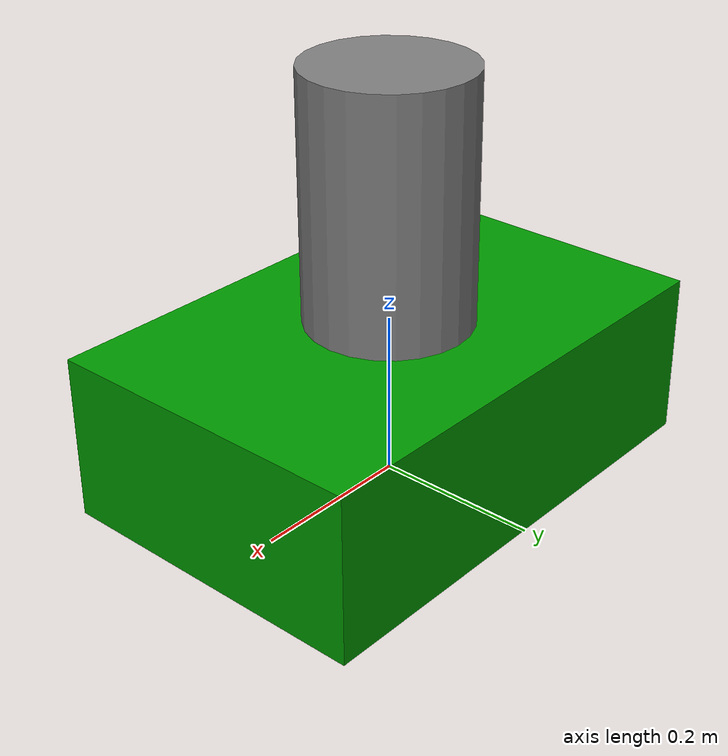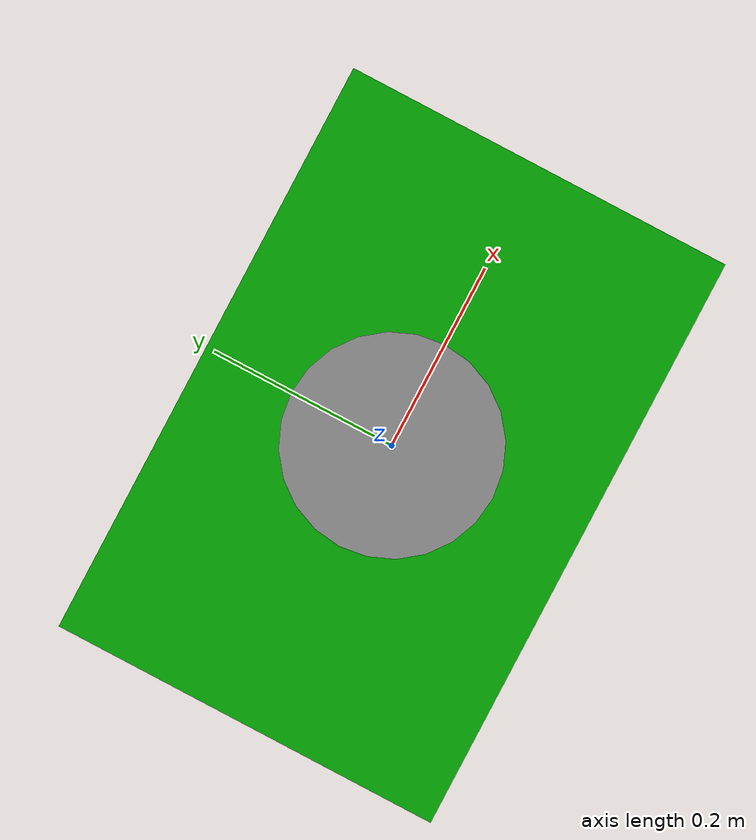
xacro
<?xml version="1.0"?>

<robot name="my_robot" xmlns:xacro="http://www.ros.org/wiki/xacro">

    <!-- Definición de materiales -->
    <material name="green">
        <color rgba="0 0.6 0 1"/> <!-- Color verde -->
    </material>
    <material name="grey">
        <color rgba="0.5 0.5 0.5 1"/> <!-- Color gris -->
    </material>

    <!-- Definición del enlace base (base_link) -->
    <link name="base_link">
        <visual>
            <geometry>
                <box size="0.6 0.4 0.2"/> <!-- Caja con dimensiones 0.6 x 0.4 x 0.2 -->
            </geometry>
            <origin xyz="0 0 0.1" rpy="0 0 0"/> <!-- Posición del enlace en el marco de coordenadas -->
            <material name="green"/> <!-- Material verde -->
        </visual>
    </link>

    <!-- Definición del enlace del hombro (shoulder_link) -->
    <link name="shoulder_link">
        <visual>
            <geometry>
                <cylinder radius="0.1" length="0.3"/> <!-- Cilindro con radio 0.1 y longitud 0.3 -->
            </geometry>
            <origin xyz="0 0 0.15" rpy="0 0 0"/> <!-- Posición del enlace en el marco de coordenadas -->
            <material name="grey"/> <!-- Material gris -->
        </visual>
    </link>

    <!-- Definición de la articulación entre base_link y shoulder_link -->
    <joint name="base_shoulder_joint" type="revolute">
        <parent link="base_link"/> <!-- Enlace padre -->
        <child link="shoulder_link"/> <!-- Enlace hijo -->
        <origin xyz="0 0 0.2" rpy="0 0 0"/> <!-- Posición de la articulación -->
        <axis xyz="0 0 1"/> <!-- Eje de rotación (Z) -->
        <limit lower="-3.14" upper="3.14" effort="100" velocity="100"/> <!-- Límites de la articulación -->
    </joint>

</robot>
